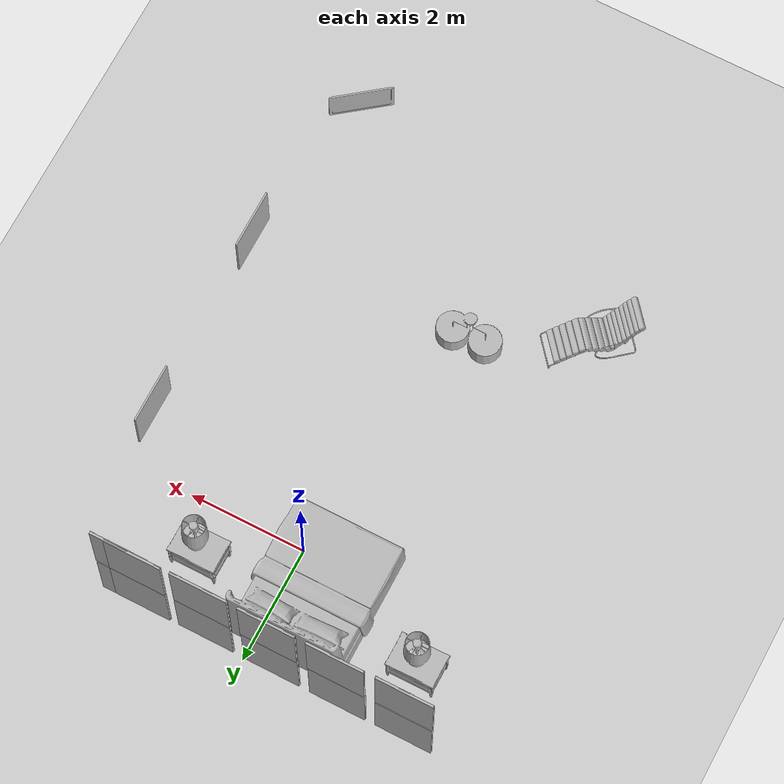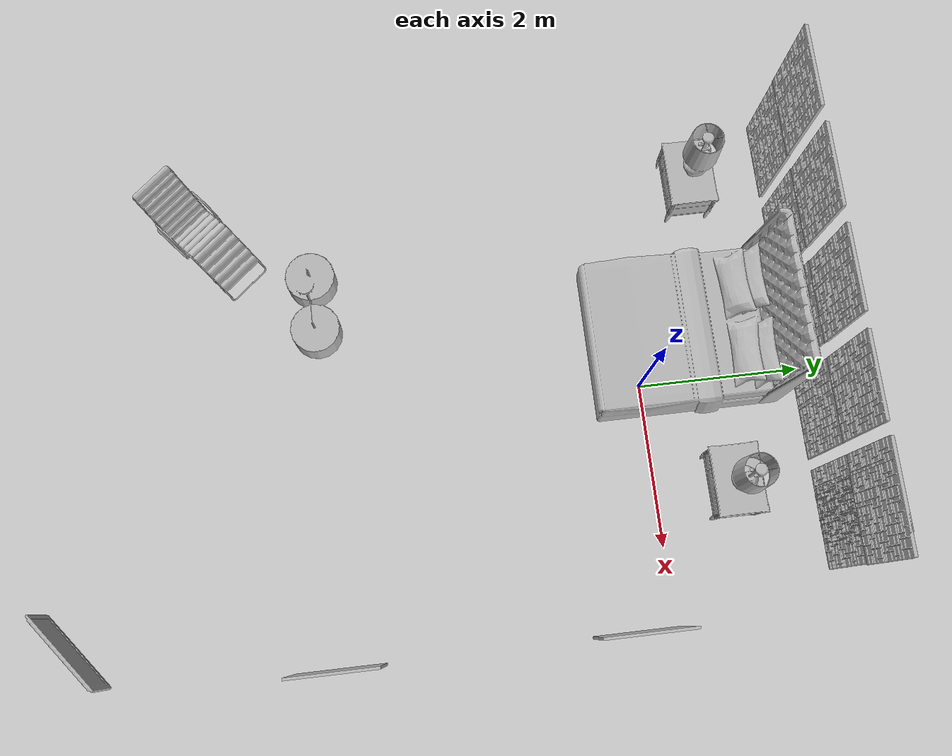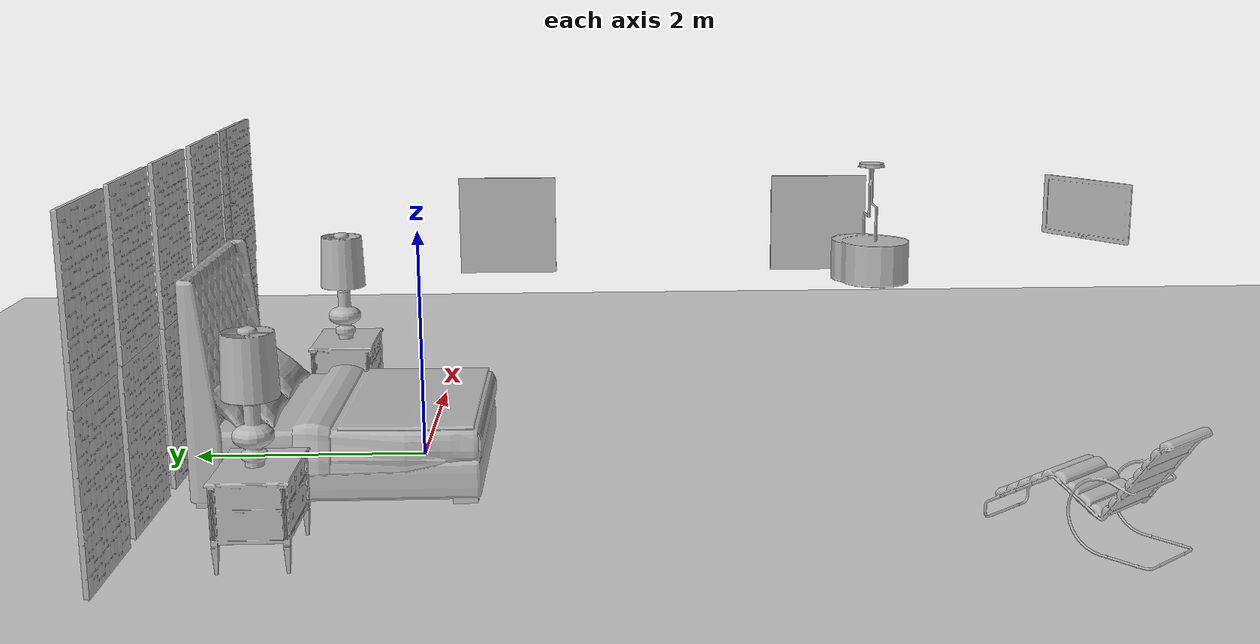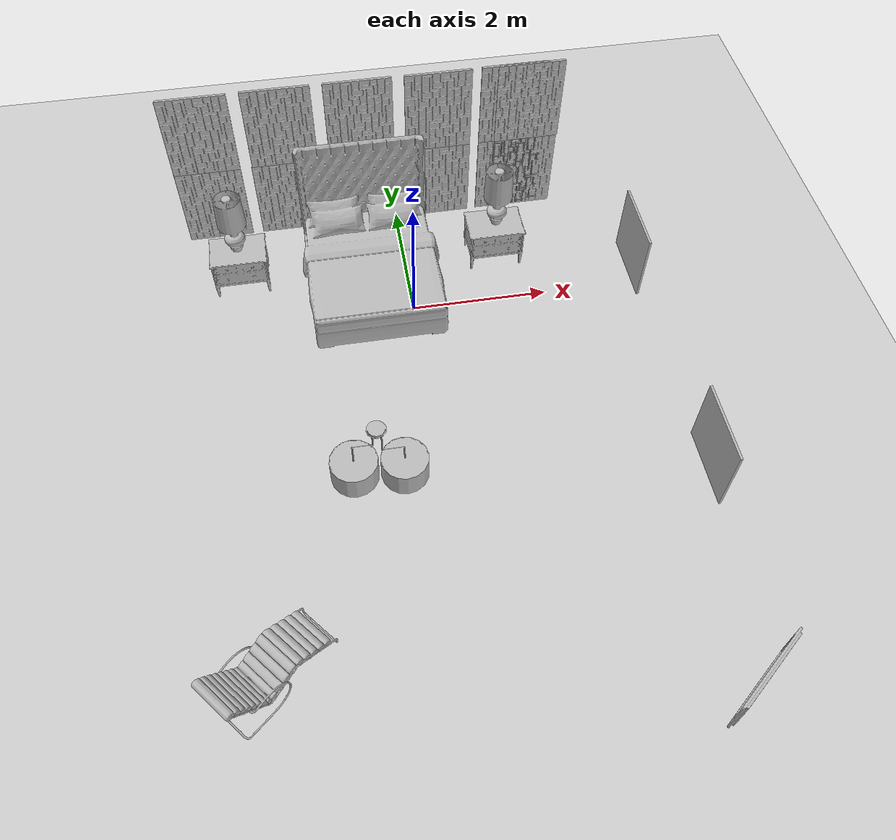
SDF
<sdf version="1.4">
 <world name="default">
  <light name="sun" type="directional">
   <pose>0 0 10 0 -0 0</pose>
   <diffuse>0.8 0.8 0.8 1</diffuse>
   <specular>0.2 0.2 0.2 1</specular>
   <attenuation>
    <range>1000</range>
    <constant>0.9</constant>
    <linear>0.01</linear>
    <quadratic>0.001</quadratic>
   </attenuation>
   <direction>-0.5 0.1 -0.9</direction>
  </light>
  <model name="ground_plane">
   <static>1</static>
   <link name="link">
    <collision name="collision">
     <geometry><plane><normal>0 0 1</normal><size>100 100</size></plane></geometry>
     <surface><friction><ode><mu>100</mu><mu2>50</mu2></ode></friction></surface>
    </collision>
    <visual name="visual">
     <cast_shadows>0</cast_shadows>
     <geometry><plane><normal>0 0 1</normal><size>100 100</size></plane></geometry>
     <material>
      <script><uri>file://media/materials/scripts/gazebo.material</uri><name>Gazebo/Grey</name></script>
     </material>
    </visual>
    <velocity_decay><linear>0</linear><angular>0</angular></velocity_decay>
   </link>
  </model>
  <physics type="ode">
   <max_step_size>0.001</max_step_size>
   <real_time_factor>1</real_time_factor>
   <real_time_update_rate>1000</real_time_update_rate>
   <gravity>0 0 -9.8</gravity>
  </physics>
  <scene><ambient>0.4 0.4 0.4 1</ambient><background>0.7 0.7 0.7 1</background><shadows>1</shadows></scene>
  <spherical_coordinates>
   <surface_model>EARTH_WGS84</surface_model>
   <latitude_deg>0</latitude_deg>
   <longitude_deg>0</longitude_deg>
   <elevation>0</elevation>
   <heading_deg>0</heading_deg>
  </spherical_coordinates>
  <model name="s__1165_0">
   <pose>-2.79109 1.94449 0.04 0 0 -1.5708</pose>
   <static>1</static>
   <link name="link">
    <collision name="collision"><geometry><box><size>0.050001 0.98 2</size></box></geometry></collision>
    <visual name="visual"><geometry><mesh><uri>model://s__1165/s__1165.dae</uri></mesh></geometry></visual>
    <velocity_decay><linear>0</linear><angular>0</angular></velocity_decay>
   </link>
  </model>
  <model name="s__1165_1">
   <pose>-2.79109 1.93642 1.38 0 0 -1.5708</pose>
   <static>1</static>
   <link name="link">
    <collision name="collision"><geometry><box><size>0.050001 0.98 2</size></box></geometry></collision>
    <visual name="visual"><geometry><mesh><uri>model://s__1165/s__1165.dae</uri></mesh></geometry></visual>
    <velocity_decay><linear>0</linear><angular>0</angular></velocity_decay>
   </link>
  </model>
  <model name="s__1165_2">
   <pose>-1.65109 1.95093 0.04 0 0 -1.5708</pose>
   <static>1</static>
   <link name="link">
    <collision name="collision"><geometry><box><size>0.050001 0.98 2</size></box></geometry></collision>
    <visual name="visual"><geometry><mesh><uri>model://s__1165/s__1165.dae</uri></mesh></geometry></visual>
    <velocity_decay><linear>0</linear><angular>0</angular></velocity_decay>
   </link>
  </model>
  <model name="s__1165_3">
   <pose>-0.499088 1.94834 0.04 0 0 -1.5708</pose>
   <static>1</static>
   <link name="link">
    <collision name="collision"><geometry><box><size>0.050001 0.98 2</size></box></geometry></collision>
    <visual name="visual"><geometry><mesh><uri>model://s__1165/s__1165.dae</uri></mesh></geometry></visual>
    <velocity_decay><linear>0</linear><angular>0</angular></velocity_decay>
   </link>
  </model>
  <model name="s__1165_4">
   <pose>0.666209 1.94278 0.04 0 0 -1.5708</pose>
   <static>1</static>
   <link name="link">
    <collision name="collision"><geometry><box><size>0.050001 0.98 2</size></box></geometry></collision>
    <visual name="visual"><geometry><mesh><uri>model://s__1165/s__1165.dae</uri></mesh></geometry></visual>
    <velocity_decay><linear>0</linear><angular>0</angular></velocity_decay>
   </link>
  </model>
  <model name="s__1165_5">
   <pose>1.78091 1.95164 0.04 0 0 -1.5708</pose>
   <static>1</static>
   <link name="link">
    <collision name="collision"><geometry><box><size>0.050001 0.98 2</size></box></geometry></collision>
    <visual name="visual"><geometry><mesh><uri>model://s__1165/s__1165.dae</uri></mesh></geometry></visual>
    <velocity_decay><linear>0</linear><angular>0</angular></velocity_decay>
   </link>
  </model>
  <model name="s__1165_6">
   <pose>2.00891 1.95158 0.04 0 0 -1.5708</pose>
   <static>1</static>
   <link name="link">
    <collision name="collision"><geometry><box><size>0.050001 0.98 2</size></box></geometry></collision>
    <visual name="visual"><geometry><mesh><uri>model://s__1165/s__1165.dae</uri></mesh></geometry></visual>
    <velocity_decay><linear>0</linear><angular>0</angular></velocity_decay>
   </link>
  </model>
  <model name="s__1165_7">
   <pose>-1.63909 1.94918 1.38 0 0 -1.5708</pose>
   <static>1</static>
   <link name="link">
    <collision name="collision"><geometry><box><size>0.050001 0.98 2</size></box></geometry></collision>
    <visual name="visual"><geometry><mesh><uri>model://s__1165/s__1165.dae</uri></mesh></geometry></visual>
    <velocity_decay><linear>0</linear><angular>0</angular></velocity_decay>
   </link>
  </model>
  <model name="s__1165_8">
   <pose>1.78091 1.95293 1.38 0 0 -1.5708</pose>
   <static>1</static>
   <link name="link">
    <collision name="collision"><geometry><box><size>0.050001 0.98 2</size></box></geometry></collision>
    <visual name="visual"><geometry><mesh><uri>model://s__1165/s__1165.dae</uri></mesh></geometry></visual>
    <velocity_decay><linear>0</linear><angular>0</angular></velocity_decay>
   </link>
  </model>
  <model name="s__1165_9">
   <pose>-0.48709 1.95039 1.38 0 0 -1.5708</pose>
   <static>1</static>
   <link name="link">
    <collision name="collision"><geometry><box><size>0.050001 0.98 2</size></box></geometry></collision>
    <visual name="visual"><geometry><mesh><uri>model://s__1165/s__1165.dae</uri></mesh></geometry></visual>
    <velocity_decay><linear>0</linear><angular>0</angular></velocity_decay>
   </link>
  </model>
  <model name="s__1165_10">
   <pose>0.664909 1.94254 1.38 0 0 -1.5708</pose>
   <static>1</static>
   <link name="link">
    <collision name="collision"><geometry><box><size>0.050001 0.98 2</size></box></geometry></collision>
    <visual name="visual"><geometry><mesh><uri>model://s__1165/s__1165.dae</uri></mesh></geometry></visual>
    <velocity_decay><linear>0</linear><angular>0</angular></velocity_decay>
   </link>
  </model>
  <model name="s__1165_11">
   <pose>2.02091 1.94417 1.38 0 0 -1.5708</pose>
   <static>1</static>
   <link name="link">
    <collision name="collision"><geometry><box><size>0.050001 0.98 2</size></box></geometry></collision>
    <visual name="visual"><geometry><mesh><uri>model://s__1165/s__1165.dae</uri></mesh></geometry></visual>
    <velocity_decay><linear>0</linear><angular>0</angular></velocity_decay>
   </link>
  </model>
  <model name="s__1842_0">
   <pose>-0.547088 0.544679 0.05 0 0 -1.5708</pose>
   <static>1</static>
   <link name="link">
    <collision name="collision"><geometry><box><size>2.32 2.06 2</size></box></geometry></collision>
    <visual name="visual"><geometry><mesh><uri>model://s__1842/s__1842.dae</uri></mesh></geometry></visual>
    <velocity_decay><linear>0</linear><angular>0</angular></velocity_decay>
   </link>
  </model>
  <model name="s__1307_0">
   <pose>-2.49109 0.916908 0.05 0 0 -1.5708</pose>
   <static>1</static>
   <link name="link">
    <collision name="collision"><geometry><box><size>0.5904 0.84 2</size></box></geometry></collision>
    <visual name="visual"><geometry><mesh><uri>model://s__1307/s__1307.dae</uri></mesh></geometry></visual>
    <velocity_decay><linear>0</linear><angular>0</angular></velocity_decay>
   </link>
  </model>
  <model name="s__1307_1">
   <pose>1.36091 0.868911 0.05 0 0 -1.5708</pose>
   <static>1</static>
   <link name="link">
    <collision name="collision"><geometry><box><size>0.5904 0.84 2</size></box></geometry></collision>
    <visual name="visual"><geometry><mesh><uri>model://s__1307/s__1307.dae</uri></mesh></geometry></visual>
    <velocity_decay><linear>0</linear><angular>0</angular></velocity_decay>
   </link>
  </model>
  <model name="s__1983_0">
   <pose>1.38491 0.880909 0.73142 0 -0 0</pose>
   <static>1</static>
   <link name="link">
    <collision name="collision"><geometry><box><size>0.42 0.42 2</size></box></geometry></collision>
    <visual name="visual"><geometry><mesh><uri>model://s__1983/s__1983.dae</uri></mesh></geometry></visual>
    <velocity_decay><linear>0</linear><angular>0</angular></velocity_decay>
   </link>
  </model>
  <model name="s__1983_1">
   <pose>-2.49109 0.940908 0.73142 0 -0 0</pose>
   <static>1</static>
   <link name="link">
    <collision name="collision"><geometry><box><size>0.42 0.42 2</size></box></geometry></collision>
    <visual name="visual"><geometry><mesh><uri>model://s__1983/s__1983.dae</uri></mesh></geometry></visual>
    <velocity_decay><linear>0</linear><angular>0</angular></velocity_decay>
   </link>
  </model>
  <model name="s__1839_0">
   <pose>-0.943093 -3.75109 1.69 0 0 -1.5708</pose>
   <static>1</static>
   <link name="link">
    <collision name="collision"><geometry><box><size>0.54 1.1 2</size></box></geometry></collision>
    <visual name="visual"><geometry><mesh><uri>model://s__1839/s__1839.dae</uri></mesh></geometry></visual>
    <velocity_decay><linear>0</linear><angular>0</angular></velocity_decay>
   </link>
  </model>
  <model name="216_0">
   <pose>2.4533 -6.61243 1.45 0 -0 2.23402</pose>
   <static>1</static>
   <link name="link">
    <collision name="collision"><geometry><box><size>0.05 1.05992 2</size></box></geometry></collision>
    <visual name="visual"><geometry><mesh><uri>model://216/216.dae</uri></mesh></geometry></visual>
    <velocity_decay><linear>0</linear><angular>0</angular></velocity_decay>
   </link>
  </model>
  <model name="s__2195_0">
   <pose>-2.4431 -5.22709 0.05 0 -0 0.698132</pose>
   <static>1</static>
   <link name="link">
    <collision name="collision"><geometry><box><size>1.54968 0.63 2</size></box></geometry></collision>
    <visual name="visual"><geometry><mesh><uri>model://s__2195/s__2195.dae</uri></mesh></geometry></visual>
    <velocity_decay><linear>0</linear><angular>0</angular></velocity_decay>
   </link>
  </model>
  <model name="781_0">
   <pose>2.95791 -3.88309 1.05 0 -0 3.14159</pose>
   <static>1</static>
   <link name="link">
    <collision name="collision"><geometry><box><size>0.03 1 2</size></box></geometry></collision>
    <visual name="visual"><geometry><mesh><uri>model://781/781.dae</uri></mesh></geometry></visual>
    <velocity_decay><linear>0</linear><angular>0</angular></velocity_decay>
   </link>
  </model>
  <model name="781_1">
   <pose>2.9378 -0.607089 1.05 0 -0 3.14159</pose>
   <static>1</static>
   <link name="link">
    <collision name="collision"><geometry><box><size>0.03 1 2</size></box></geometry></collision>
    <visual name="visual"><geometry><mesh><uri>model://781/781.dae</uri></mesh></geometry></visual>
    <velocity_decay><linear>0</linear><angular>0</angular></velocity_decay>
   </link>
  </model>
 </world>
</sdf>
